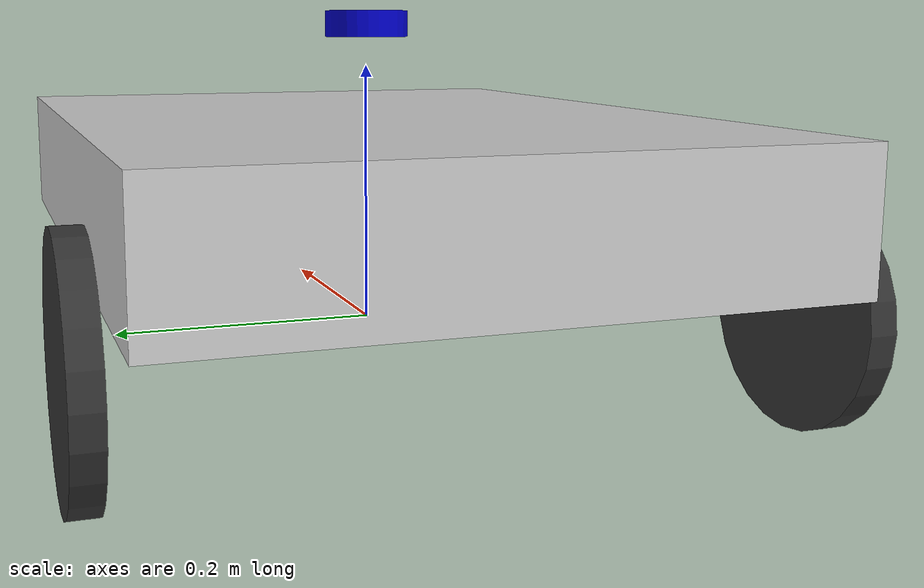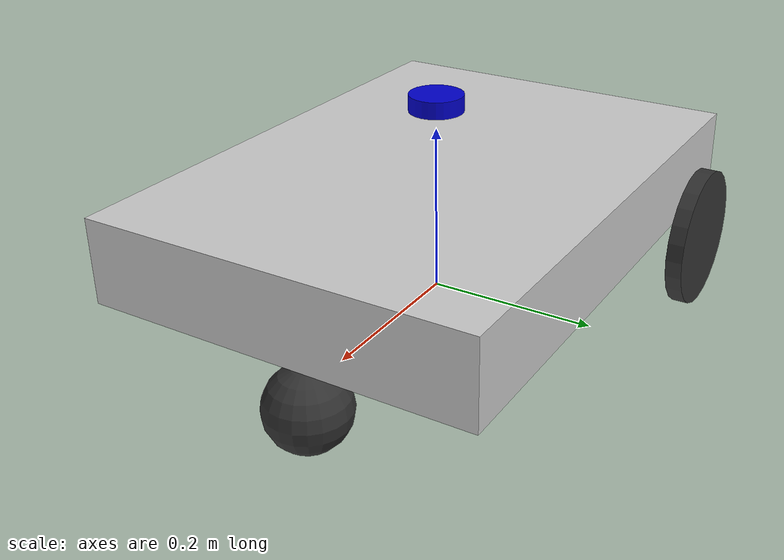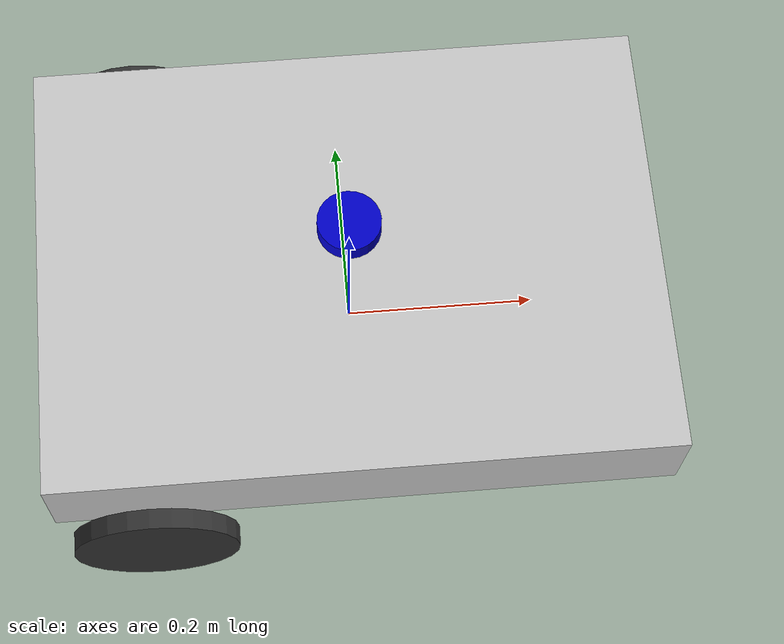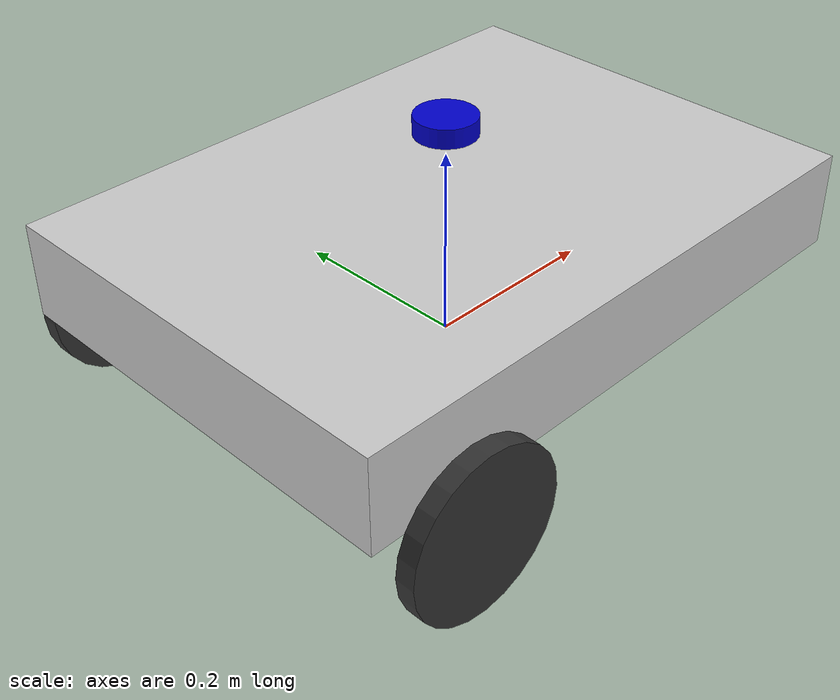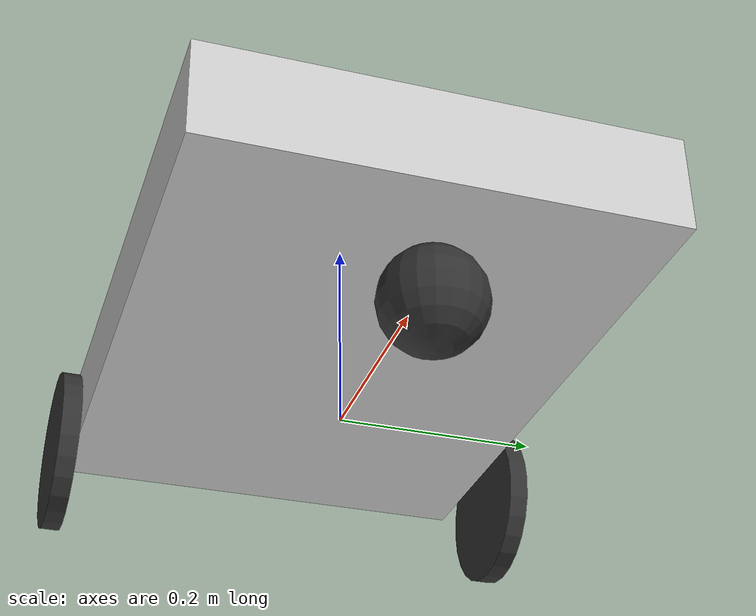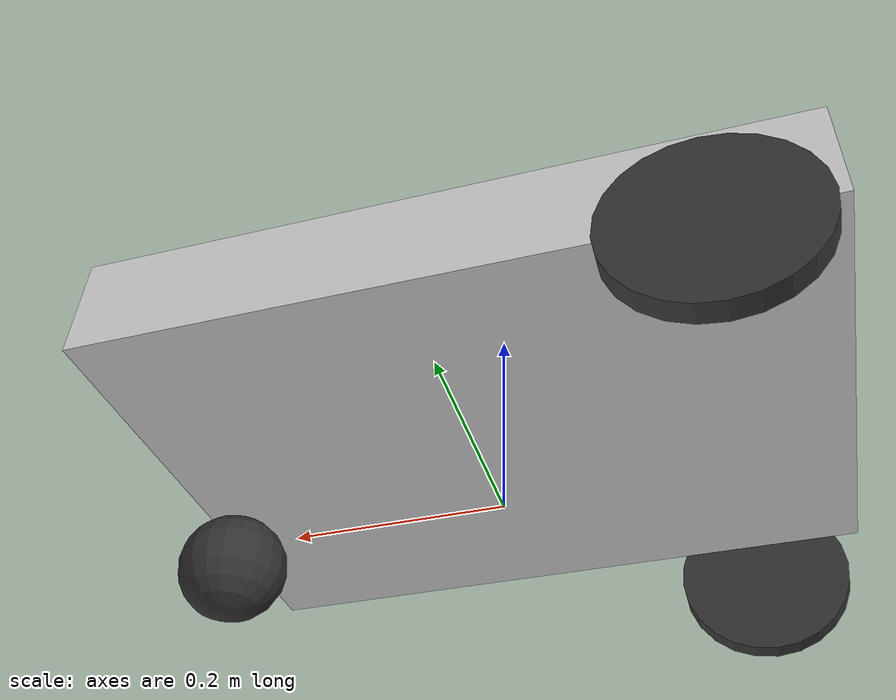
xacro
<?xml version="1.0"?>
<robot xmlns:xacro="http://www.ros.org/wiki/xacro" name="robaka_v2">

  <xacro:property name="base_width" value="0.46"/>
  <xacro:property name="base_len" value="0.635"/>
  <xacro:property name="base_height" value="0.1"/>
  <xacro:property name="wheel_radius" value="0.085"/>
  <xacro:property name="base_wheel_gap" value="0.02"/>
  <xacro:property name="wheel_separation" value="0.47"/>
  <xacro:property name="wheel_joint_offset_x" value="-0.2175"/>
  <xacro:property name="wheel_joint_offset_z" value="0.0275"/>
  <xacro:property name="caster_wheel_radius" value="0.05"/>
  <xacro:property name="caster_wheel_joint_offset_x" value="0.2625"/>
  <xacro:property name="caster_wheel_joint_offset_z" value="0.035"/>

  <xacro:include filename="$(find robaka)/urdf/robaka_v2_gazebo_plugins.xacro"/>

  <material name="blue">
    <color rgba="0 0 0.8 1"/>
  </material>
  <material name="black">
    <color rgba="0 0 0 1"/>
  </material>
  <material name="darkgray">
    <color rgba="0.2 0.2 0.2 1"/>
  </material>
  <material name="lightgray">
    <color rgba="0.8 0.8 0.8 1"/>
  </material>
  <material name="white">
    <color rgba="1 1 1 1"/>
  </material>
  <material name="red">
    <color rgba="0.8 0.0 0.0 1.0"/>
  </material>

  <!-- Import Rviz colors -->

  <xacro:macro name="box_inertia" params="m w h d">
    <inertial>
      <mass value="${m}"/>
      <inertia ixx="${m / 12.0 * (d*d + h*h)}" ixy="0.0" ixz="0.0" iyy="${m / 12.0 * (w*w + h*h)}" iyz="0.0" izz="${m / 12.0 * (w*w + d*d)}"/>
    </inertial>
  </xacro:macro>

  <link name="dummy"/>
  <link name="base_footprint">
    <xacro:box_inertia m="8" w="0.001" h="0.001" d="0.001"/>
    <visual>
      <origin xyz="0 0 0" rpy="0 0 0" />
      <material name="white"/>
        <geometry>
            <box size="0.001 0.001 0.001" />
        </geometry>
    </visual>
  </link>
  <joint name="dummy_joint" type="fixed">
     <parent link="dummy"/>
     <child link="base_footprint"/>
     </joint>

  <link name="base_link">
    <xacro:box_inertia m="1" w="${base_len}" h="${base_width}" d="0.01"/>
    <visual>
      <material name="lightgray"/>
      <geometry>
        <box size="${base_len} ${base_width} ${base_height}"/>
      </geometry>
    </visual>
    <collision>
      <geometry>
        <box size="${base_len} ${base_width} ${base_height}"/>
      </geometry>
    </collision>
  </link>

  <joint name="base_link_joint" type="fixed">
    <origin xyz="0 0 ${wheel_radius + 0.0275}" rpy="0 0 0" />
    <parent link="base_footprint"/>
    <child link="base_link" />
  </joint>

  <xacro:macro name="cylinder_inertia" params="m r h">
    <inertial>
      <mass value="${m}"/>
      <inertia ixx="${m*(3*r*r+h*h)/12}" ixy = "0" ixz = "0" iyy="${m*(3*r*r+h*h)/12}" iyz = "0" izz="${m*r*r/2}"/>
    </inertial>
  </xacro:macro>

  <xacro:macro name="wheel" params="prefix reflect">
    <link name="${prefix}_wheel">
      <visual>
	<material name="darkgray"/>
        <origin xyz="0 0 0" rpy="${pi/2} 0 0"/>
        <geometry>
          <cylinder radius="${wheel_radius}" length="0.02"/>
        </geometry>
      </visual>
      <collision>
        <origin xyz="0 0 0" rpy="${pi/2} 0 0"/>
        <geometry>
          <cylinder radius="${wheel_radius}" length="0.02"/>
        </geometry>
      </collision>
      <xacro:cylinder_inertia m="10" r="${wheel_radius}" h="0.02"/>
    </link>

    <joint name="${prefix}_wheel" type="continuous">
      <axis xyz="0 1 0" rpy="0 0 0" />
      <parent link="base_link"/>
      <child link="${prefix}_wheel"/>
      <origin xyz="${wheel_joint_offset_x} ${((base_width/2)+base_wheel_gap)*reflect} -${base_height/2 + wheel_joint_offset_z}" rpy="0 0 0"/>
    </joint>
  </xacro:macro>

  <xacro:wheel prefix="left" reflect="1"/>
  <xacro:wheel prefix="right" reflect="-1"/>

  <xacro:macro name="sphere_inertia" params="m r">
    <inertial>
      <mass value="${m}"/>
      <inertia ixx="${2.0*m*(r*r)/5.0}" ixy="0.0" ixz="0.0" iyy="${2.0*m*(r*r)/5.0}" iyz="0.0" izz="${2.0*m*(r*r)/5.0}"/>
    </inertial>
  </xacro:macro>

   <link name="caster_wheel">
     <visual>
       <material name="darkgray"/>
      <origin xyz="0 0 0" rpy="0 0 0"/>
      <geometry>
        <sphere radius="${caster_wheel_radius}"/>
      </geometry>
    </visual>
    <collision>
      <origin xyz="0 0 0" rpy="0 0 0"/>
      <geometry>
        <sphere radius="${caster_wheel_radius}"/>
      </geometry>
    </collision>
    <xacro:sphere_inertia m="5" r="${caster_wheel_radius}"/>
  </link>

  <joint name="caster_wheel_joint" type="continuous">
    <axis xyz="0 1 0" rpy="0 0 0" />
    <parent link="base_link"/>
    <child link="caster_wheel"/>
    <origin xyz="${caster_wheel_joint_offset_x} 0 -${caster_wheel_joint_offset_z+caster_wheel_radius + base_height/2}" rpy="0 0 0"/>
  </joint>

  <joint name="imu_joint" type="fixed">
    <parent link="base_link" />
    <child link="imu" />
    <origin xyz="0.16 -0.065 0.035" rpy="0 0 0" />
  </joint>
  <link name="imu" />

  <joint name="lidar_joint" type="fixed">
    <parent link="base_link" />
    <child link="lidar" />
    <origin xyz="0.0 0.0 0.12" rpy="0 0 3.14159" />
  </joint>
  <link name="lidar">
    <visual>
      <material name="blue" />
      <origin xyz="0 0 0" rpy="0 0 0"/>
      <geometry>
        <cylinder radius="0.032" length="0.02"/>
      </geometry>
    </visual>
  </link>

  <joint name="camera_joint" type="fixed">
    <origin xyz="0.185 0 0.07" rpy="0 0 3.14159" />
    <parent link="base_link" />
    <child link="camera_link" />
  </joint>
  <link name="camera_link" type="fixed">
  </link>

</robot>
